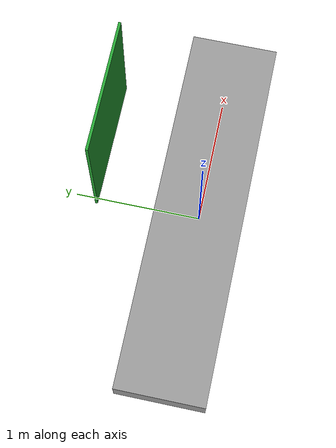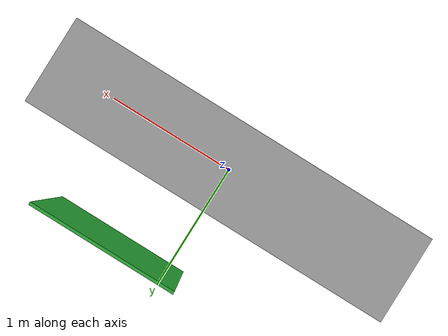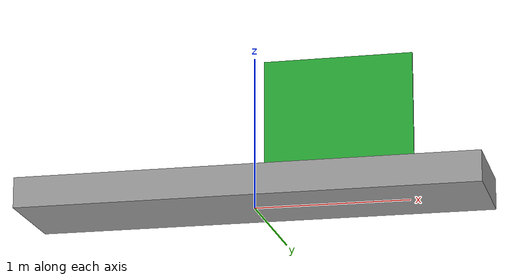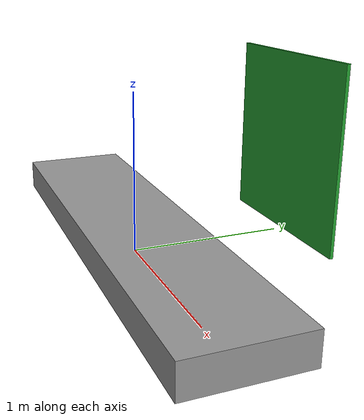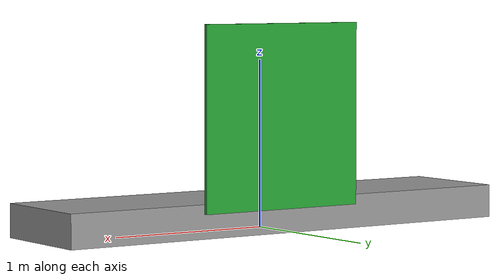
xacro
<?xml version="1.0" ?>

<robot name="myboat"  xmlns:xacro="http://www.ros.org/wiki/xacro">

  <!-- Constants for robot dimensions -->

  <!-- Import all Gazebo-customization elements, including Gazebo colors -->
  <xacro:include filename="$(find boot1_description)/urdf/boot1.gazebo" />
  <!-- Import Rviz colors -->
  <xacro:include filename="$(find boot1_description)/urdf/materials.xacro" />

  <joint name="starboard_rowlock_joint" type="revolute">
    <parent link="skiff"/>
    <child link="starboard_rowlock"/>
    <origin rpy="0.0  0.0 0.0" xyz="0.0 0.8 0.72"/>
    <axis xyz="0 0 1"/>
    <limit effort="1000.0" lower="-1.4" upper="1.4" velocity="1.0"/>
  </joint>

  <link name="world"/>
  <!-- Dummy for gazebo   -->
  <joint name="dummy" type="fixed">
    <parent link="world"/>
    <child link="skiff"/>
  </joint>

  <link name="skiff">
    <inertial>
      <mass value="75"/>   <!-- 15 + 60 voor de roeier -->
      <origin rpy="0 0 0" xyz="0.0 0.0 0.1"/>
      <inertia ixx="3.2" ixy="0" ixz="0" iyy="54.2" iyz="0" izz="57"/>
    </inertial>
    <collision>
      <origin rpy="0 0 0" xyz="0.0 0.0   0.1"/>
      <geometry>
        <box size="3.0 0.7 0.2"/>
      </geometry>
    </collision>
    <visual>
      <!-- should be a nice skull shape including riggers-->
      <origin rpy="0 0 0" xyz="0.0 0.0   0.1"/>
      <geometry>
        <box size="3.0 0.7 0.2"/>
      </geometry>
    </visual>
  </link>

  <link name="starboard_rowlock">
    <inertial>
      <mass value="1.0"/>
      <origin rpy="0.0 0 0" xyz="0.4 0.0 0.0"/>
      <inertia ixx="0.00017" ixy="0" ixz="0" iyy="0.00017" iyz="0" izz="0.00007"/>
    </inertial>
    <collision>
      <origin rpy="0.0 0 0" xyz="0.4 0.0   0.0"/>
      <geometry>
        <box size="1.02 0.02 1.04"/>
      </geometry>
    </collision>
    <visual>
      <origin rpy="0.0 0 0" xyz="0.4 0.0   0.0"/>
      <geometry>
        <box size="1.02 0.02 1.04"/>
      </geometry>
    </visual>
  </link>

  <transmission name="tran1">
    <type>transmission_interface/SimpleTransmission</type>
    <joint name="starboard_rowlock_joint">
      <hardwareInterface>hardware_interface/EffortJointInterface</hardwareInterface>
    </joint>
    <actuator name="motor1">
      <mechanicalReduction>1</mechanicalReduction>
    </actuator>
  </transmission>

</robot>
